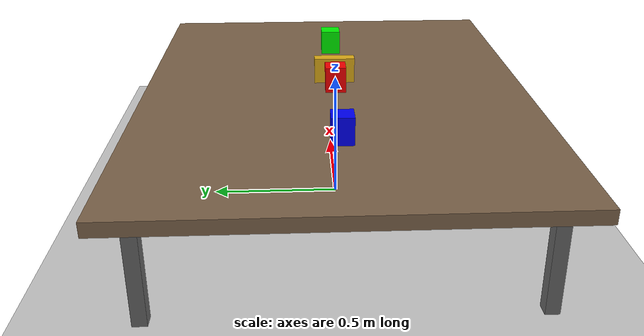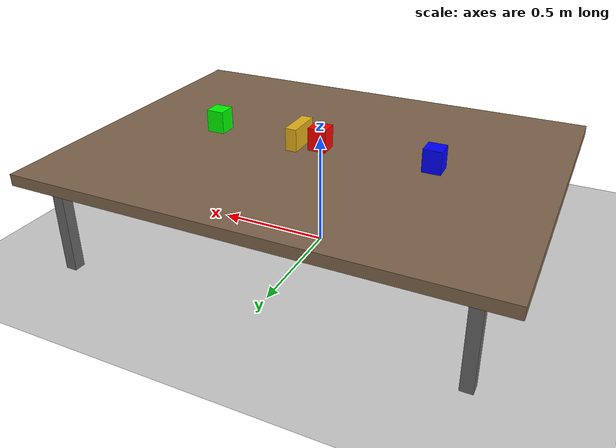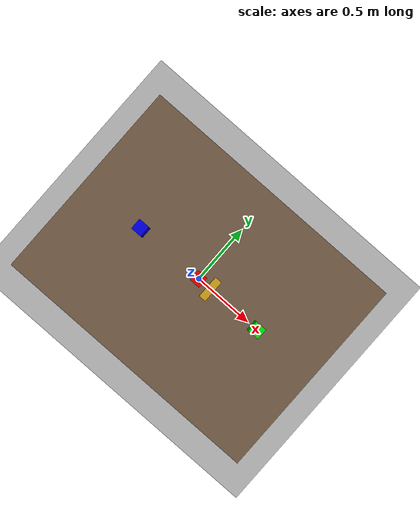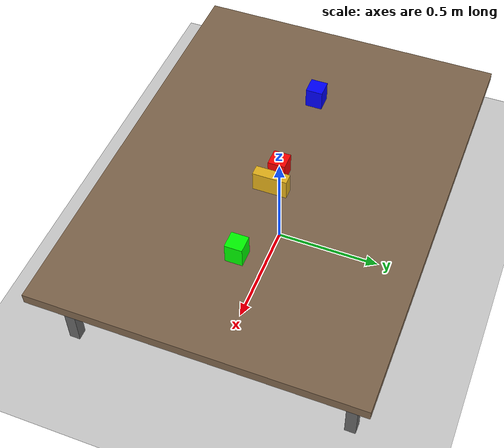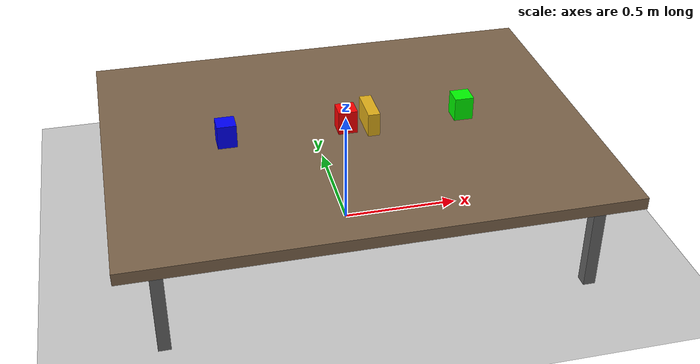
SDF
<sdf version='1.9'>
  <world name='empty_world'>
    <gravity>0 0 -9.8</gravity>
    <magnetic_field>6e-06 2.3e-05 -4.2e-05</magnetic_field>
    <atmosphere type='adiabatic'/>
    <physics type='ode'>
      <max_step_size>0.001</max_step_size>
      <real_time_factor>1</real_time_factor>
      <real_time_update_rate>1000</real_time_update_rate>
    </physics>
    <scene>
      <ambient>0.4 0.4 0.4 1</ambient>
      <background>0.7 0.7 0.7 1</background>
      <shadows>true</shadows>
    </scene>

    <!-- 地面 -->
    <model name='ground_plane'>
      <static>true</static>
      <link name='link'>
        <collision name='collision'>
          <geometry>
            <plane>
              <normal>0 0 1</normal>
              <size>20 20</size>
            </plane>
          </geometry>
          <surface>
            <friction>
              <ode/>
            </friction>
            <bounce/>
            <contact/>
          </surface>
        </collision>
        <visual name='visual'>
          <geometry>
            <plane>
              <normal>0 0 1</normal>
              <size>20 20</size>
            </plane>
          </geometry>
          <material>
            <ambient>0.8 0.8 0.8 1</ambient>
            <diffuse>0.8 0.8 0.8 1</diffuse>
            <specular>0.8 0.8 0.8 1</specular>
          </material>
        </visual>
        <pose>0 0 0 0 -0 0</pose>
        <inertial>
          <pose>0 0 0 0 -0 0</pose>
          <mass>1</mass>
          <inertia>
            <ixx>1</ixx>
            <ixy>0</ixy>
            <ixz>0</ixz>
            <iyy>1</iyy>
            <iyz>0</iyz>
            <izz>1</izz>
          </inertia>
        </inertial>
        <enable_wind>false</enable_wind>
      </link>
      <pose>0 0 0 0 -0 0</pose>
      <self_collide>false</self_collide>
    </model>

    <!-- 光照 -->
    <light name='sun' type='directional'>
      <pose>0 0 10 0 -0 0</pose>
      <cast_shadows>true</cast_shadows>
      <intensity>1</intensity>
      <direction>-0.5 0.1 -0.9</direction>
      <diffuse>0.8 0.8 0.8 1</diffuse>
      <specular>0.2 0.2 0.2 1</specular>
      <attenuation>
        <range>1000</range>
        <linear>0.01</linear>
        <constant>0.90000000000000002</constant>
        <quadratic>0.001</quadratic>
      </attenuation>
      <spot>
        <inner_angle>0</inner_angle>
        <outer_angle>0</outer_angle>
        <falloff>0</falloff>
      </spot>
    </light>

    <!-- ================= 桌面 ================= -->
    <model name="table">
      <static>true</static>
      <link name="table_link">
        <pose>0.0 0.0 0.425 0 0 0</pose>
        <collision name="table_collision">
          <geometry>
            <box>
              <size>2.0 1.5 0.05</size>
            </box>
          </geometry>
          <surface>
            <friction>
              <ode>
                <mu>0.8</mu>
                <mu2>0.8</mu2>
              </ode>
            </friction>
          </surface>
        </collision>
        <visual name="table_visual">
          <geometry>
            <box>
              <size>2.0 1.5 0.05</size>
            </box>
          </geometry>
          <material>
            <ambient>0.4 0.3 0.2 1</ambient>
            <diffuse>0.5 0.4 0.3 1</diffuse>
            <specular>0.2 0.2 0.2 1</specular>
          </material>
        </visual>
      </link>
    </model>

    <!-- ================= 桌腿1（左下） ================= -->
    <model name="leg1">
      <static>true</static>
      <link name="leg1_link">
        <pose>-0.85 -0.65 0.2 0 0 0</pose>
        <collision name="leg1_collision">
          <geometry>
            <box>
              <size>0.05 0.05 0.4</size>
            </box>
          </geometry>
        </collision>
        <visual name="leg1_visual">
          <geometry>
            <box>
              <size>0.05 0.05 0.4</size>
            </box>
          </geometry>
          <material>
            <ambient>0.3 0.3 0.3 1</ambient>
            <diffuse>0.4 0.4 0.4 1</diffuse>
          </material>
        </visual>
      </link>
    </model>

    <!-- ================= 桌腿2（右下） ================= -->
    <model name="leg2">
      <static>true</static>
      <link name="leg2_link">
        <pose>0.85 -0.65 0.2 0 0 0</pose>
        <collision name="leg2_collision">
          <geometry>
            <box>
              <size>0.05 0.05 0.4</size>
            </box>
          </geometry>
        </collision>
        <visual name="leg2_visual">
          <geometry>
            <box>
              <size>0.05 0.05 0.4</size>
            </box>
          </geometry>
          <material>
            <ambient>0.3 0.3 0.3 1</ambient>
            <diffuse>0.4 0.4 0.4 1</diffuse>
          </material>
        </visual>
      </link>
    </model>

    <!-- ================= 桌腿3（左上） ================= -->
    <model name="leg3">
      <static>true</static>
      <link name="leg3_link">
        <pose>-0.85 0.65 0.2 0 0 0</pose>
        <collision name="leg3_collision">
          <geometry>
            <box>
              <size>0.05 0.05 0.4</size>
            </box>
          </geometry>
        </collision>
        <visual name="leg3_visual">
          <geometry>
            <box>
              <size>0.05 0.05 0.4</size>
            </box>
          </geometry>
          <material>
            <ambient>0.3 0.3 0.3 1</ambient>
            <diffuse>0.4 0.4 0.4 1</diffuse>
          </material>
        </visual>
      </link>
    </model>

    <!-- ================= 桌腿4（右上） ================= -->
    <model name="leg4">
      <static>true</static>
      <link name="leg4_link">
        <pose>0.85 0.65 0.2 0 0 0</pose>
        <collision name="leg4_collision">
          <geometry>
            <box>
              <size>0.05 0.05 0.4</size>
            </box>
          </geometry>
        </collision>
        <visual name="leg4_visual">
          <geometry>
            <box>
              <size>0.05 0.05 0.4</size>
            </box>
          </geometry>
          <material>
            <ambient>0.3 0.3 0.3 1</ambient>
            <diffuse>0.4 0.4 0.4 1</diffuse>
          </material>
        </visual>
      </link>
    </model>

    <!-- ================= RED BOX ================= -->
    <model name="red_box">
      <static>false</static>
      <link name="red_link">
        <pose>0.0 0.0 0.50 0 0 0</pose>
        <collision name="red_collision">
          <geometry>
            <box>
              <size>0.08 0.08 0.1</size>
            </box>
          </geometry>
        </collision>
        <visual name="red_visual">
          <geometry>
            <box>
              <size>0.08 0.08 0.1</size>
            </box>
          </geometry>
          <material>
            <ambient>1 0 0 1</ambient>
            <diffuse>1 0 0 1</diffuse>
          </material>
        </visual>
      </link>
    </model>

    <!-- ================= GREEN BOX ================= -->
    <model name="green_box">
      <static>false</static>
      <link name="green_link">
        <pose>0.5 0.0 0.50 0 0 0</pose>
        <collision name="green_collision">
          <geometry>
            <box>
              <size>0.08 0.08 0.1</size>
            </box>
          </geometry>
        </collision>
        <visual name="green_visual">
          <geometry>
            <box>
              <size>0.08 0.08 0.1</size>
            </box>
          </geometry>
          <material>
            <ambient>0 1 0 1</ambient>
            <diffuse>0 1 0 1</diffuse>
          </material>
        </visual>
      </link>
    </model>

    <!-- ================= BLUE BOX ================= -->
    <model name="blue_box">
      <static>false</static>
      <link name="blue_link">
        <pose>-0.5 0.0 0.50 0 0 0</pose>
        <collision name="blue_collision">
          <geometry>
            <box>
              <size>0.08 0.08 0.1</size>
            </box>
          </geometry>
        </collision>
        <visual name="blue_visual">
          <geometry>
            <box>
              <size>0.08 0.08 0.1</size>
            </box>
          </geometry>
          <material>
            <ambient>0 0 1 1</ambient>
            <diffuse>0 0 1 1</diffuse>
          </material>
        </visual>
      </link>
    </model>

    <!-- ================= 长方形物体（旋转90度，放在 red_box 右侧） ================= -->
    <model name="rect_block">
      <static>false</static>
      <link name="rect_link">
        <!-- 绕Z轴旋转90度（1.5708弧度），长方体沿Y方向延伸 -->
        <pose>0.10 0.0 0.50 0 0 1.5708</pose>
        <collision name="rect_collision">
          <geometry>
            <box>
              <!-- 尺寸：长0.16，宽0.05，高0.1 -->
              <size>0.16 0.05 0.1</size>
            </box>
          </geometry>
          <surface>
            <friction>
              <ode>
                <mu>0.8</mu>
                <mu2>0.8</mu2>
              </ode>
            </friction>
          </surface>
        </collision>
        <visual name="rect_visual">
          <geometry>
            <box>
              <size>0.16 0.05 0.1</size>
            </box>
          </geometry>
          <material>
            <ambient>0.9 0.7 0.1 1</ambient>
            <diffuse>0.9 0.7 0.1 1</diffuse>
            <specular>0.3 0.3 0.1 1</specular>
          </material>
        </visual>
      </link>
    </model>

  </world>
</sdf>
